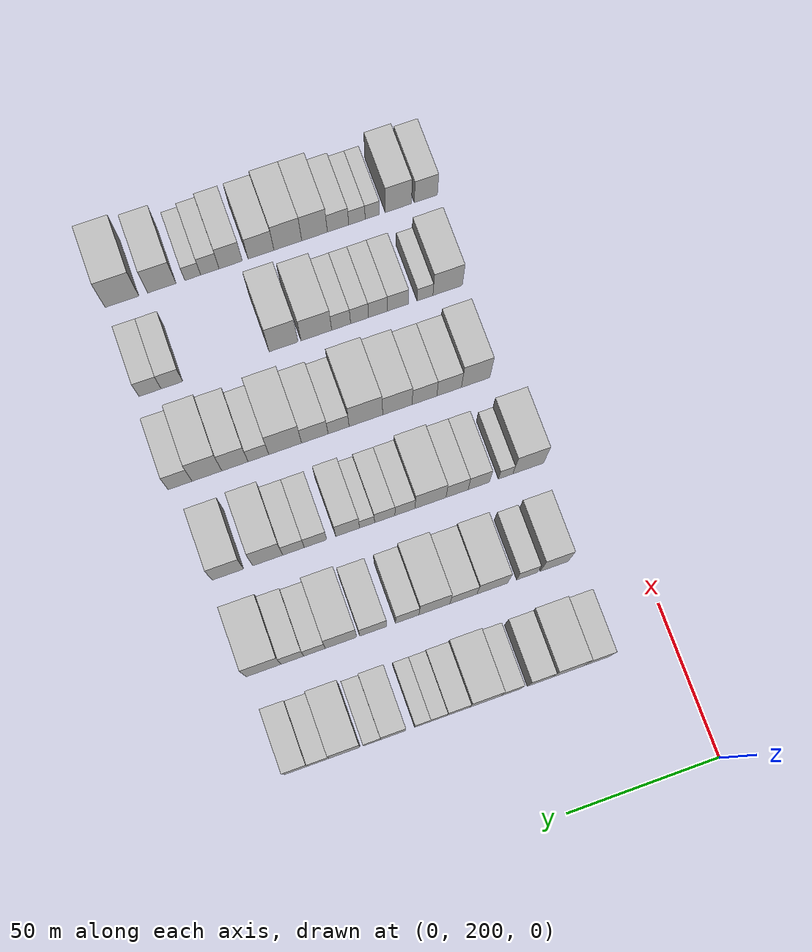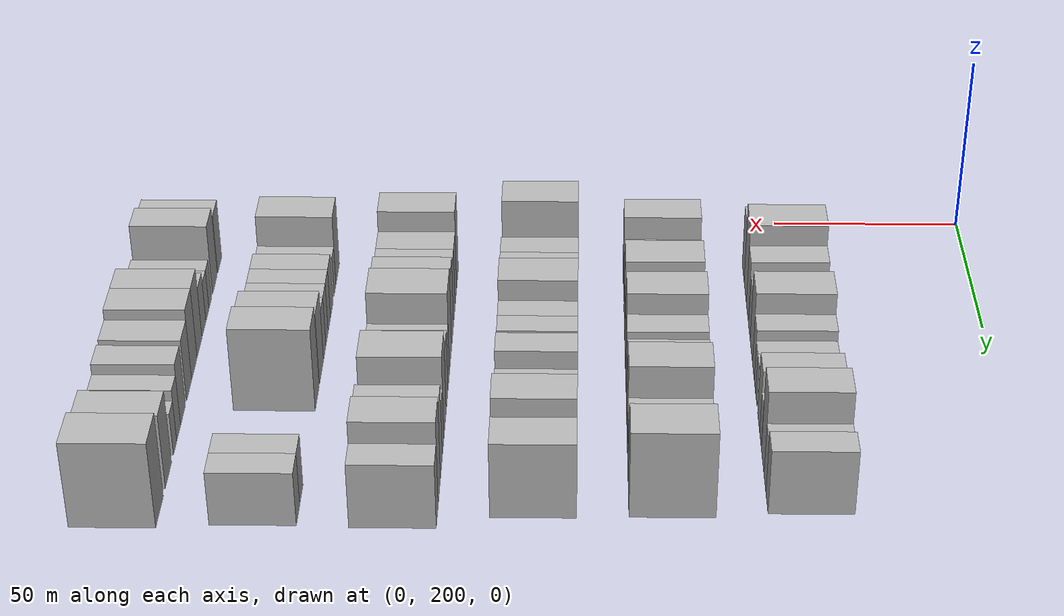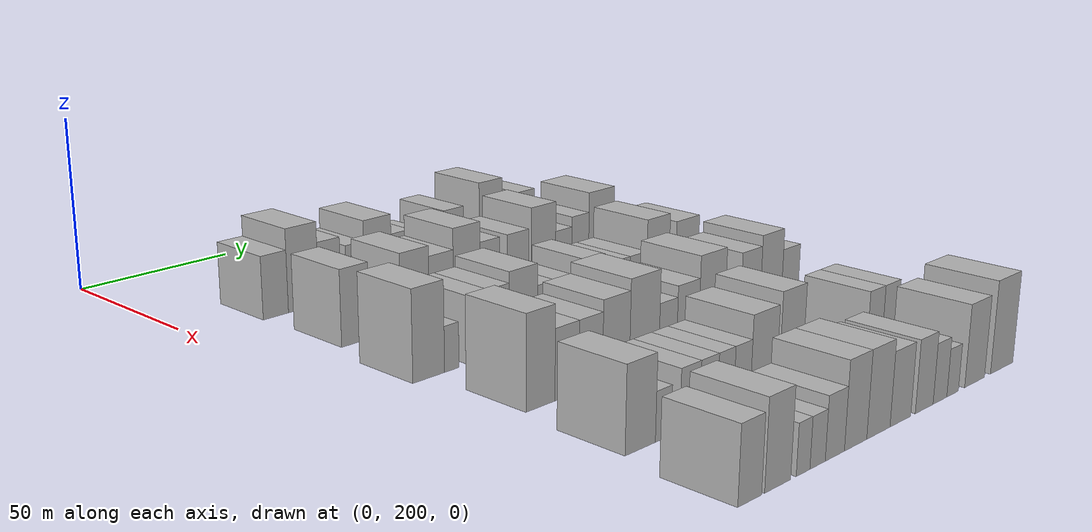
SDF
<sdf version="1.6">
 <world name="default">
  <model name="building_75">
   <static>1</static>
   <pose>50.0000 224.8557 0 0.000000 0.000000 0.000000</pose>
   <link name="link">
    <pose>0 0 9.00 0 0 0</pose>
    <collision name="collision"><geometry><box><size>20.0000 8.4988 18.0000</size></box></geometry></collision>
    <visual name="visual">
     <cast_shadows>0</cast_shadows>
     <geometry><box><size>20.0000 8.4988 18.0000</size></box></geometry>
     <material>
      <script>
       <uri>model://HANNAS_wall/materials/scripts</uri>
       <uri>model://HANNAS_wall/materials/textures</uri>
       <name>vrc/HANNAS_wall</name>
      </script>
     </material>
    </visual>
   </link>
  </model>
  <model name="building_76">
   <static>1</static>
   <pose>50.0000 234.3874 0 0.000000 0.000000 0.000000</pose>
   <link name="link">
    <pose>0 0 12.00 0 0 0</pose>
    <collision name="collision"><geometry><box><size>20.0000 10.5645 24.0000</size></box></geometry></collision>
    <visual name="visual">
     <cast_shadows>0</cast_shadows>
     <geometry><box><size>20.0000 10.5645 24.0000</size></box></geometry>
     <material>
      <script>
       <uri>model://HANNAS_wall/materials/scripts</uri>
       <uri>model://HANNAS_wall/materials/textures</uri>
       <name>vrc/HANNAS_wall</name>
      </script>
     </material>
    </visual>
   </link>
  </model>
  <model name="building_77">
   <static>1</static>
   <pose>50.0000 243.6649 0 0.000000 0.000000 0.000000</pose>
   <link name="link">
    <pose>0 0 9.00 0 0 0</pose>
    <collision name="collision"><geometry><box><size>20.0000 7.9906 18.0000</size></box></geometry></collision>
    <visual name="visual">
     <cast_shadows>0</cast_shadows>
     <geometry><box><size>20.0000 7.9906 18.0000</size></box></geometry>
     <material>
      <script>
       <uri>model://HANNAS_wall/materials/scripts</uri>
       <uri>model://HANNAS_wall/materials/textures</uri>
       <name>vrc/HANNAS_wall</name>
      </script>
     </material>
    </visual>
   </link>
  </model>
  <model name="building_78">
   <static>1</static>
   <pose>50.0000 253.0120 0 0.000000 0.000000 0.000000</pose>
   <link name="link">
    <pose>0 0 7.50 0 0 0</pose>
    <collision name="collision"><geometry><box><size>20.0000 6.7035 15.0000</size></box></geometry></collision>
    <visual name="visual">
     <cast_shadows>0</cast_shadows>
     <geometry><box><size>20.0000 6.7035 15.0000</size></box></geometry>
     <material>
      <script>
       <uri>model://HANNAS_wall/materials/scripts</uri>
       <uri>model://HANNAS_wall/materials/textures</uri>
       <name>vrc/HANNAS_wall</name>
      </script>
     </material>
    </visual>
   </link>
  </model>
  <model name="building_79">
   <static>1</static>
   <pose>50.0000 261.5066 0 0.000000 0.000000 0.000000</pose>
   <link name="link">
    <pose>0 0 10.50 0 0 0</pose>
    <collision name="collision"><geometry><box><size>20.0000 10.2857 21.0000</size></box></geometry></collision>
    <visual name="visual">
     <cast_shadows>0</cast_shadows>
     <geometry><box><size>20.0000 10.2857 21.0000</size></box></geometry>
     <material>
      <script>
       <uri>model://HANNAS_wall/materials/scripts</uri>
       <uri>model://HANNAS_wall/materials/textures</uri>
       <name>vrc/HANNAS_wall</name>
      </script>
     </material>
    </visual>
   </link>
  </model>
  <model name="building_80">
   <static>1</static>
   <pose>50.0000 270.3149 0 0.000000 0.000000 0.000000</pose>
   <link name="link">
    <pose>0 0 7.50 0 0 0</pose>
    <collision name="collision"><geometry><box><size>20.0000 7.3310 15.0000</size></box></geometry></collision>
    <visual name="visual">
     <cast_shadows>0</cast_shadows>
     <geometry><box><size>20.0000 7.3310 15.0000</size></box></geometry>
     <material>
      <script>
       <uri>model://HANNAS_wall/materials/scripts</uri>
       <uri>model://HANNAS_wall/materials/textures</uri>
       <name>vrc/HANNAS_wall</name>
      </script>
     </material>
    </visual>
   </link>
  </model>
  <model name="building_81">
   <static>1</static>
   <pose>50.0000 276.7431 0 0.000000 0.000000 0.000000</pose>
   <link name="link">
    <pose>0 0 6.00 0 0 0</pose>
    <collision name="collision"><geometry><box><size>20.0000 5.5253 12.0000</size></box></geometry></collision>
    <visual name="visual">
     <cast_shadows>0</cast_shadows>
     <geometry><box><size>20.0000 5.5253 12.0000</size></box></geometry>
     <material>
      <script>
       <uri>model://HANNAS_wall/materials/scripts</uri>
       <uri>model://HANNAS_wall/materials/textures</uri>
       <name>vrc/HANNAS_wall</name>
      </script>
     </material>
    </visual>
   </link>
  </model>
  <model name="building_82">
   <static>1</static>
   <pose>50.0000 282.0297 0 0.000000 0.000000 0.000000</pose>
   <link name="link">
    <pose>0 0 6.00 0 0 0</pose>
    <collision name="collision"><geometry><box><size>20.0000 5.0480 12.0000</size></box></geometry></collision>
    <visual name="visual">
     <cast_shadows>0</cast_shadows>
     <geometry><box><size>20.0000 5.0480 12.0000</size></box></geometry>
     <material>
      <script>
       <uri>model://HANNAS_wall/materials/scripts</uri>
       <uri>model://HANNAS_wall/materials/textures</uri>
       <name>vrc/HANNAS_wall</name>
      </script>
     </material>
    </visual>
   </link>
  </model>
  <model name="building_83">
   <static>1</static>
   <pose>50.0000 291.5822 0 0.000000 0.000000 0.000000</pose>
   <link name="link">
    <pose>0 0 9.00 0 0 0</pose>
    <collision name="collision"><geometry><box><size>20.0000 8.0568 18.0000</size></box></geometry></collision>
    <visual name="visual">
     <cast_shadows>0</cast_shadows>
     <geometry><box><size>20.0000 8.0568 18.0000</size></box></geometry>
     <material>
      <script>
       <uri>model://HANNAS_wall/materials/scripts</uri>
       <uri>model://HANNAS_wall/materials/textures</uri>
       <name>vrc/HANNAS_wall</name>
      </script>
     </material>
    </visual>
   </link>
  </model>
  <model name="building_84">
   <static>1</static>
   <pose>50.0000 298.3881 0 0.000000 0.000000 0.000000</pose>
   <link name="link">
    <pose>0 0 6.00 0 0 0</pose>
    <collision name="collision"><geometry><box><size>20.0000 5.5551 12.0000</size></box></geometry></collision>
    <visual name="visual">
     <cast_shadows>0</cast_shadows>
     <geometry><box><size>20.0000 5.5551 12.0000</size></box></geometry>
     <material>
      <script>
       <uri>model://HANNAS_wall/materials/scripts</uri>
       <uri>model://HANNAS_wall/materials/textures</uri>
       <name>vrc/HANNAS_wall</name>
      </script>
     </material>
    </visual>
   </link>
  </model>
  <model name="building_85">
   <static>1</static>
   <pose>50.0000 307.0923 0 0.000000 0.000000 0.000000</pose>
   <link name="link">
    <pose>0 0 12.00 0 0 0</pose>
    <collision name="collision"><geometry><box><size>20.0000 9.8533 24.0000</size></box></geometry></collision>
    <visual name="visual">
     <cast_shadows>0</cast_shadows>
     <geometry><box><size>20.0000 9.8533 24.0000</size></box></geometry>
     <material>
      <script>
       <uri>model://HANNAS_wall/materials/scripts</uri>
       <uri>model://HANNAS_wall/materials/textures</uri>
       <name>vrc/HANNAS_wall</name>
      </script>
     </material>
    </visual>
   </link>
  </model>
  <model name="building_86">
   <static>1</static>
   <pose>50.0000 315.4735 0 0.000000 0.000000 0.000000</pose>
   <link name="link">
    <pose>0 0 7.50 0 0 0</pose>
    <collision name="collision"><geometry><box><size>20.0000 6.9090 15.0000</size></box></geometry></collision>
    <visual name="visual">
     <cast_shadows>0</cast_shadows>
     <geometry><box><size>20.0000 6.9090 15.0000</size></box></geometry>
     <material>
      <script>
       <uri>model://HANNAS_wall/materials/scripts</uri>
       <uri>model://HANNAS_wall/materials/textures</uri>
       <name>vrc/HANNAS_wall</name>
      </script>
     </material>
    </visual>
   </link>
  </model>
  <model name="building_87">
   <static>1</static>
   <pose>50.0000 322.7484 0 0.000000 0.000000 0.000000</pose>
   <link name="link">
    <pose>0 0 9.00 0 0 0</pose>
    <collision name="collision"><geometry><box><size>20.0000 7.6408 18.0000</size></box></geometry></collision>
    <visual name="visual">
     <cast_shadows>0</cast_shadows>
     <geometry><box><size>20.0000 7.6408 18.0000</size></box></geometry>
     <material>
      <script>
       <uri>model://HANNAS_wall/materials/scripts</uri>
       <uri>model://HANNAS_wall/materials/textures</uri>
       <name>vrc/HANNAS_wall</name>
      </script>
     </material>
    </visual>
   </link>
  </model>
  <model name="building_201">
   <static>1</static>
   <pose>82.0000 226.5754 0 0.000000 0.000000 0.000000</pose>
   <link name="link">
    <pose>0 0 10.50 0 0 0</pose>
    <collision name="collision"><geometry><box><size>20.0000 9.3134 21.0000</size></box></geometry></collision>
    <visual name="visual">
     <cast_shadows>0</cast_shadows>
     <geometry><box><size>20.0000 9.3134 21.0000</size></box></geometry>
     <material>
      <script>
       <uri>model://HANNAS_wall/materials/scripts</uri>
       <uri>model://HANNAS_wall/materials/textures</uri>
       <name>vrc/HANNAS_wall</name>
      </script>
     </material>
    </visual>
   </link>
  </model>
  <model name="building_202">
   <static>1</static>
   <pose>82.0000 235.6783 0 0.000000 0.000000 0.000000</pose>
   <link name="link">
    <pose>0 0 7.50 0 0 0</pose>
    <collision name="collision"><geometry><box><size>20.0000 6.8925 15.0000</size></box></geometry></collision>
    <visual name="visual">
     <cast_shadows>0</cast_shadows>
     <geometry><box><size>20.0000 6.8925 15.0000</size></box></geometry>
     <material>
      <script>
       <uri>model://HANNAS_wall/materials/scripts</uri>
       <uri>model://HANNAS_wall/materials/textures</uri>
       <name>vrc/HANNAS_wall</name>
      </script>
     </material>
    </visual>
   </link>
  </model>
  <model name="building_203">
   <static>1</static>
   <pose>82.0000 247.2587 0 0.000000 0.000000 0.000000</pose>
   <link name="link">
    <pose>0 0 10.50 0 0 0</pose>
    <collision name="collision"><geometry><box><size>20.0000 10.2682 21.0000</size></box></geometry></collision>
    <visual name="visual">
     <cast_shadows>0</cast_shadows>
     <geometry><box><size>20.0000 10.2682 21.0000</size></box></geometry>
     <material>
      <script>
       <uri>model://HANNAS_wall/materials/scripts</uri>
       <uri>model://HANNAS_wall/materials/textures</uri>
       <name>vrc/HANNAS_wall</name>
      </script>
     </material>
    </visual>
   </link>
  </model>
  <model name="building_204">
   <static>1</static>
   <pose>82.0000 256.8901 0 0.000000 0.000000 0.000000</pose>
   <link name="link">
    <pose>0 0 9.00 0 0 0</pose>
    <collision name="collision"><geometry><box><size>20.0000 8.9946 18.0000</size></box></geometry></collision>
    <visual name="visual">
     <cast_shadows>0</cast_shadows>
     <geometry><box><size>20.0000 8.9946 18.0000</size></box></geometry>
     <material>
      <script>
       <uri>model://HANNAS_wall/materials/scripts</uri>
       <uri>model://HANNAS_wall/materials/textures</uri>
       <name>vrc/HANNAS_wall</name>
      </script>
     </material>
    </visual>
   </link>
  </model>
  <model name="building_205">
   <static>1</static>
   <pose>82.0000 266.4867 0 0.000000 0.000000 0.000000</pose>
   <link name="link">
    <pose>0 0 12.00 0 0 0</pose>
    <collision name="collision"><geometry><box><size>20.0000 10.1987 24.0000</size></box></geometry></collision>
    <visual name="visual">
     <cast_shadows>0</cast_shadows>
     <geometry><box><size>20.0000 10.1987 24.0000</size></box></geometry>
     <material>
      <script>
       <uri>model://HANNAS_wall/materials/scripts</uri>
       <uri>model://HANNAS_wall/materials/textures</uri>
       <name>vrc/HANNAS_wall</name>
      </script>
     </material>
    </visual>
   </link>
  </model>
  <model name="building_206">
   <static>1</static>
   <pose>82.0000 275.4344 0 0.000000 0.000000 0.000000</pose>
   <link name="link">
    <pose>0 0 9.00 0 0 0</pose>
    <collision name="collision"><geometry><box><size>20.0000 7.6966 18.0000</size></box></geometry></collision>
    <visual name="visual">
     <cast_shadows>0</cast_shadows>
     <geometry><box><size>20.0000 7.6966 18.0000</size></box></geometry>
     <material>
      <script>
       <uri>model://HANNAS_wall/materials/scripts</uri>
       <uri>model://HANNAS_wall/materials/textures</uri>
       <name>vrc/HANNAS_wall</name>
      </script>
     </material>
    </visual>
   </link>
  </model>
  <model name="building_207">
   <static>1</static>
   <pose>82.0000 286.6799 0 0.000000 0.000000 0.000000</pose>
   <link name="link">
    <pose>0 0 9.00 0 0 0</pose>
    <collision name="collision"><geometry><box><size>20.0000 8.7943 18.0000</size></box></geometry></collision>
    <visual name="visual">
     <cast_shadows>0</cast_shadows>
     <geometry><box><size>20.0000 8.7943 18.0000</size></box></geometry>
     <material>
      <script>
       <uri>model://HANNAS_wall/materials/scripts</uri>
       <uri>model://HANNAS_wall/materials/textures</uri>
       <name>vrc/HANNAS_wall</name>
      </script>
     </material>
    </visual>
   </link>
  </model>
  <model name="building_208">
   <static>1</static>
   <pose>82.0000 297.1948 0 0.000000 0.000000 0.000000</pose>
   <link name="link">
    <pose>0 0 12.00 0 0 0</pose>
    <collision name="collision"><geometry><box><size>20.0000 10.2355 24.0000</size></box></geometry></collision>
    <visual name="visual">
     <cast_shadows>0</cast_shadows>
     <geometry><box><size>20.0000 10.2355 24.0000</size></box></geometry>
     <material>
      <script>
       <uri>model://HANNAS_wall/materials/scripts</uri>
       <uri>model://HANNAS_wall/materials/textures</uri>
       <name>vrc/HANNAS_wall</name>
      </script>
     </material>
    </visual>
   </link>
  </model>
  <model name="building_209">
   <static>1</static>
   <pose>82.0000 305.8446 0 0.000000 0.000000 0.000000</pose>
   <link name="link">
    <pose>0 0 7.50 0 0 0</pose>
    <collision name="collision"><geometry><box><size>20.0000 7.0640 15.0000</size></box></geometry></collision>
    <visual name="visual">
     <cast_shadows>0</cast_shadows>
     <geometry><box><size>20.0000 7.0640 15.0000</size></box></geometry>
     <material>
      <script>
       <uri>model://HANNAS_wall/materials/scripts</uri>
       <uri>model://HANNAS_wall/materials/textures</uri>
       <name>vrc/HANNAS_wall</name>
      </script>
     </material>
    </visual>
   </link>
  </model>
  <model name="building_210">
   <static>1</static>
   <pose>82.0000 313.0717 0 0.000000 0.000000 0.000000</pose>
   <link name="link">
    <pose>0 0 9.00 0 0 0</pose>
    <collision name="collision"><geometry><box><size>20.0000 7.3902 18.0000</size></box></geometry></collision>
    <visual name="visual">
     <cast_shadows>0</cast_shadows>
     <geometry><box><size>20.0000 7.3902 18.0000</size></box></geometry>
     <material>
      <script>
       <uri>model://HANNAS_wall/materials/scripts</uri>
       <uri>model://HANNAS_wall/materials/textures</uri>
       <name>vrc/HANNAS_wall</name>
      </script>
     </material>
    </visual>
   </link>
  </model>
  <model name="building_211">
   <static>1</static>
   <pose>82.0000 322.4652 0 0.000000 0.000000 0.000000</pose>
   <link name="link">
    <pose>0 0 12.00 0 0 0</pose>
    <collision name="collision"><geometry><box><size>20.0000 11.3969 24.0000</size></box></geometry></collision>
    <visual name="visual">
     <cast_shadows>0</cast_shadows>
     <geometry><box><size>20.0000 11.3969 24.0000</size></box></geometry>
     <material>
      <script>
       <uri>model://HANNAS_wall/materials/scripts</uri>
       <uri>model://HANNAS_wall/materials/textures</uri>
       <name>vrc/HANNAS_wall</name>
      </script>
     </material>
    </visual>
   </link>
  </model>
  <model name="building_324">
   <static>1</static>
   <pose>114.0000 223.1894 0 0.000000 0.000000 0.000000</pose>
   <link name="link">
    <pose>0 0 12.00 0 0 0</pose>
    <collision name="collision"><geometry><box><size>20.0000 10.4297 24.0000</size></box></geometry></collision>
    <visual name="visual">
     <cast_shadows>0</cast_shadows>
     <geometry><box><size>20.0000 10.4297 24.0000</size></box></geometry>
     <material>
      <script>
       <uri>model://HANNAS_wall/materials/scripts</uri>
       <uri>model://HANNAS_wall/materials/textures</uri>
       <name>vrc/HANNAS_wall</name>
      </script>
     </material>
    </visual>
   </link>
  </model>
  <model name="building_325">
   <static>1</static>
   <pose>114.0000 230.8320 0 0.000000 0.000000 0.000000</pose>
   <link name="link">
    <pose>0 0 6.00 0 0 0</pose>
    <collision name="collision"><geometry><box><size>20.0000 4.8554 12.0000</size></box></geometry></collision>
    <visual name="visual">
     <cast_shadows>0</cast_shadows>
     <geometry><box><size>20.0000 4.8554 12.0000</size></box></geometry>
     <material>
      <script>
       <uri>model://HANNAS_wall/materials/scripts</uri>
       <uri>model://HANNAS_wall/materials/textures</uri>
       <name>vrc/HANNAS_wall</name>
      </script>
     </material>
    </visual>
   </link>
  </model>
  <model name="building_326">
   <static>1</static>
   <pose>114.0000 239.8863 0 0.000000 0.000000 0.000000</pose>
   <link name="link">
    <pose>0 0 9.00 0 0 0</pose>
    <collision name="collision"><geometry><box><size>20.0000 7.2532 18.0000</size></box></geometry></collision>
    <visual name="visual">
     <cast_shadows>0</cast_shadows>
     <geometry><box><size>20.0000 7.2532 18.0000</size></box></geometry>
     <material>
      <script>
       <uri>model://HANNAS_wall/materials/scripts</uri>
       <uri>model://HANNAS_wall/materials/textures</uri>
       <name>vrc/HANNAS_wall</name>
      </script>
     </material>
    </visual>
   </link>
  </model>
  <model name="building_327">
   <static>1</static>
   <pose>114.0000 247.2273 0 0.000000 0.000000 0.000000</pose>
   <link name="link">
    <pose>0 0 9.00 0 0 0</pose>
    <collision name="collision"><geometry><box><size>20.0000 7.4287 18.0000</size></box></geometry></collision>
    <visual name="visual">
     <cast_shadows>0</cast_shadows>
     <geometry><box><size>20.0000 7.4287 18.0000</size></box></geometry>
     <material>
      <script>
       <uri>model://HANNAS_wall/materials/scripts</uri>
       <uri>model://HANNAS_wall/materials/textures</uri>
       <name>vrc/HANNAS_wall</name>
      </script>
     </material>
    </visual>
   </link>
  </model>
  <model name="building_328">
   <static>1</static>
   <pose>114.0000 256.1393 0 0.000000 0.000000 0.000000</pose>
   <link name="link">
    <pose>0 0 10.50 0 0 0</pose>
    <collision name="collision"><geometry><box><size>20.0000 10.3953 21.0000</size></box></geometry></collision>
    <visual name="visual">
     <cast_shadows>0</cast_shadows>
     <geometry><box><size>20.0000 10.3953 21.0000</size></box></geometry>
     <material>
      <script>
       <uri>model://HANNAS_wall/materials/scripts</uri>
       <uri>model://HANNAS_wall/materials/textures</uri>
       <name>vrc/HANNAS_wall</name>
      </script>
     </material>
    </visual>
   </link>
  </model>
  <model name="building_329">
   <static>1</static>
   <pose>114.0000 264.6889 0 0.000000 0.000000 0.000000</pose>
   <link name="link">
    <pose>0 0 7.50 0 0 0</pose>
    <collision name="collision"><geometry><box><size>20.0000 6.7039 15.0000</size></box></geometry></collision>
    <visual name="visual">
     <cast_shadows>0</cast_shadows>
     <geometry><box><size>20.0000 6.7039 15.0000</size></box></geometry>
     <material>
      <script>
       <uri>model://HANNAS_wall/materials/scripts</uri>
       <uri>model://HANNAS_wall/materials/textures</uri>
       <name>vrc/HANNAS_wall</name>
      </script>
     </material>
    </visual>
   </link>
  </model>
  <model name="building_330">
   <static>1</static>
   <pose>114.0000 271.4388 0 0.000000 0.000000 0.000000</pose>
   <link name="link">
    <pose>0 0 7.50 0 0 0</pose>
    <collision name="collision"><geometry><box><size>20.0000 6.7958 15.0000</size></box></geometry></collision>
    <visual name="visual">
     <cast_shadows>0</cast_shadows>
     <geometry><box><size>20.0000 6.7958 15.0000</size></box></geometry>
     <material>
      <script>
       <uri>model://HANNAS_wall/materials/scripts</uri>
       <uri>model://HANNAS_wall/materials/textures</uri>
       <name>vrc/HANNAS_wall</name>
      </script>
     </material>
    </visual>
   </link>
  </model>
  <model name="building_331">
   <static>1</static>
   <pose>114.0000 277.3533 0 0.000000 0.000000 0.000000</pose>
   <link name="link">
    <pose>0 0 6.00 0 0 0</pose>
    <collision name="collision"><geometry><box><size>20.0000 5.0332 12.0000</size></box></geometry></collision>
    <visual name="visual">
     <cast_shadows>0</cast_shadows>
     <geometry><box><size>20.0000 5.0332 12.0000</size></box></geometry>
     <material>
      <script>
       <uri>model://HANNAS_wall/materials/scripts</uri>
       <uri>model://HANNAS_wall/materials/textures</uri>
       <name>vrc/HANNAS_wall</name>
      </script>
     </material>
    </visual>
   </link>
  </model>
  <model name="building_332">
   <static>1</static>
   <pose>114.0000 283.8238 0 0.000000 0.000000 0.000000</pose>
   <link name="link">
    <pose>0 0 9.00 0 0 0</pose>
    <collision name="collision"><geometry><box><size>20.0000 7.9078 18.0000</size></box></geometry></collision>
    <visual name="visual">
     <cast_shadows>0</cast_shadows>
     <geometry><box><size>20.0000 7.9078 18.0000</size></box></geometry>
     <material>
      <script>
       <uri>model://HANNAS_wall/materials/scripts</uri>
       <uri>model://HANNAS_wall/materials/textures</uri>
       <name>vrc/HANNAS_wall</name>
      </script>
     </material>
    </visual>
   </link>
  </model>
  <model name="building_333">
   <static>1</static>
   <pose>114.0000 294.4912 0 0.000000 0.000000 0.000000</pose>
   <link name="link">
    <pose>0 0 7.50 0 0 0</pose>
    <collision name="collision"><geometry><box><size>20.0000 7.4270 15.0000</size></box></geometry></collision>
    <visual name="visual">
     <cast_shadows>0</cast_shadows>
     <geometry><box><size>20.0000 7.4270 15.0000</size></box></geometry>
     <material>
      <script>
       <uri>model://HANNAS_wall/materials/scripts</uri>
       <uri>model://HANNAS_wall/materials/textures</uri>
       <name>vrc/HANNAS_wall</name>
      </script>
     </material>
    </visual>
   </link>
  </model>
  <model name="building_334">
   <static>1</static>
   <pose>114.0000 301.7808 0 0.000000 0.000000 0.000000</pose>
   <link name="link">
    <pose>0 0 7.50 0 0 0</pose>
    <collision name="collision"><geometry><box><size>20.0000 7.1523 15.0000</size></box></geometry></collision>
    <visual name="visual">
     <cast_shadows>0</cast_shadows>
     <geometry><box><size>20.0000 7.1523 15.0000</size></box></geometry>
     <material>
      <script>
       <uri>model://HANNAS_wall/materials/scripts</uri>
       <uri>model://HANNAS_wall/materials/textures</uri>
       <name>vrc/HANNAS_wall</name>
      </script>
     </material>
    </visual>
   </link>
  </model>
  <model name="building_335">
   <static>1</static>
   <pose>114.0000 310.3108 0 0.000000 0.000000 0.000000</pose>
   <link name="link">
    <pose>0 0 12.00 0 0 0</pose>
    <collision name="collision"><geometry><box><size>20.0000 9.9076 24.0000</size></box></geometry></collision>
    <visual name="visual">
     <cast_shadows>0</cast_shadows>
     <geometry><box><size>20.0000 9.9076 24.0000</size></box></geometry>
     <material>
      <script>
       <uri>model://HANNAS_wall/materials/scripts</uri>
       <uri>model://HANNAS_wall/materials/textures</uri>
       <name>vrc/HANNAS_wall</name>
      </script>
     </material>
    </visual>
   </link>
  </model>
  <model name="building_336">
   <static>1</static>
   <pose>114.0000 323.4535 0 0.000000 0.000000 0.000000</pose>
   <link name="link">
    <pose>0 0 10.50 0 0 0</pose>
    <collision name="collision"><geometry><box><size>20.0000 10.3777 21.0000</size></box></geometry></collision>
    <visual name="visual">
     <cast_shadows>0</cast_shadows>
     <geometry><box><size>20.0000 10.3777 21.0000</size></box></geometry>
     <material>
      <script>
       <uri>model://HANNAS_wall/materials/scripts</uri>
       <uri>model://HANNAS_wall/materials/textures</uri>
       <name>vrc/HANNAS_wall</name>
      </script>
     </material>
    </visual>
   </link>
  </model>
  <model name="building_447">
   <static>1</static>
   <pose>146.0000 229.1113 0 0.000000 0.000000 0.000000</pose>
   <link name="link">
    <pose>0 0 12.00 0 0 0</pose>
    <collision name="collision"><geometry><box><size>20.0000 9.7020 24.0000</size></box></geometry></collision>
    <visual name="visual">
     <cast_shadows>0</cast_shadows>
     <geometry><box><size>20.0000 9.7020 24.0000</size></box></geometry>
     <material>
      <script>
       <uri>model://HANNAS_wall/materials/scripts</uri>
       <uri>model://HANNAS_wall/materials/textures</uri>
       <name>vrc/HANNAS_wall</name>
      </script>
     </material>
    </visual>
   </link>
  </model>
  <model name="building_448">
   <static>1</static>
   <pose>146.0000 238.1530 0 0.000000 0.000000 0.000000</pose>
   <link name="link">
    <pose>0 0 9.00 0 0 0</pose>
    <collision name="collision"><geometry><box><size>20.0000 8.3814 18.0000</size></box></geometry></collision>
    <visual name="visual">
     <cast_shadows>0</cast_shadows>
     <geometry><box><size>20.0000 8.3814 18.0000</size></box></geometry>
     <material>
      <script>
       <uri>model://HANNAS_wall/materials/scripts</uri>
       <uri>model://HANNAS_wall/materials/textures</uri>
       <name>vrc/HANNAS_wall</name>
      </script>
     </material>
    </visual>
   </link>
  </model>
  <model name="building_449">
   <static>1</static>
   <pose>146.0000 246.5409 0 0.000000 0.000000 0.000000</pose>
   <link name="link">
    <pose>0 0 9.00 0 0 0</pose>
    <collision name="collision"><geometry><box><size>20.0000 8.3944 18.0000</size></box></geometry></collision>
    <visual name="visual">
     <cast_shadows>0</cast_shadows>
     <geometry><box><size>20.0000 8.3944 18.0000</size></box></geometry>
     <material>
      <script>
       <uri>model://HANNAS_wall/materials/scripts</uri>
       <uri>model://HANNAS_wall/materials/textures</uri>
       <name>vrc/HANNAS_wall</name>
      </script>
     </material>
    </visual>
   </link>
  </model>
  <model name="building_450">
   <static>1</static>
   <pose>146.0000 255.7357 0 0.000000 0.000000 0.000000</pose>
   <link name="link">
    <pose>0 0 10.50 0 0 0</pose>
    <collision name="collision"><geometry><box><size>20.0000 9.9952 21.0000</size></box></geometry></collision>
    <visual name="visual">
     <cast_shadows>0</cast_shadows>
     <geometry><box><size>20.0000 9.9952 21.0000</size></box></geometry>
     <material>
      <script>
       <uri>model://HANNAS_wall/materials/scripts</uri>
       <uri>model://HANNAS_wall/materials/textures</uri>
       <name>vrc/HANNAS_wall</name>
      </script>
     </material>
    </visual>
   </link>
  </model>
  <model name="building_451">
   <static>1</static>
   <pose>146.0000 266.4116 0 0.000000 0.000000 0.000000</pose>
   <link name="link">
    <pose>0 0 12.00 0 0 0</pose>
    <collision name="collision"><geometry><box><size>20.0000 11.3567 24.0000</size></box></geometry></collision>
    <visual name="visual">
     <cast_shadows>0</cast_shadows>
     <geometry><box><size>20.0000 11.3567 24.0000</size></box></geometry>
     <material>
      <script>
       <uri>model://HANNAS_wall/materials/scripts</uri>
       <uri>model://HANNAS_wall/materials/textures</uri>
       <name>vrc/HANNAS_wall</name>
      </script>
     </material>
    </visual>
   </link>
  </model>
  <model name="building_452">
   <static>1</static>
   <pose>146.0000 275.6304 0 0.000000 0.000000 0.000000</pose>
   <link name="link">
    <pose>0 0 7.50 0 0 0</pose>
    <collision name="collision"><geometry><box><size>20.0000 7.0809 15.0000</size></box></geometry></collision>
    <visual name="visual">
     <cast_shadows>0</cast_shadows>
     <geometry><box><size>20.0000 7.0809 15.0000</size></box></geometry>
     <material>
      <script>
       <uri>model://HANNAS_wall/materials/scripts</uri>
       <uri>model://HANNAS_wall/materials/textures</uri>
       <name>vrc/HANNAS_wall</name>
      </script>
     </material>
    </visual>
   </link>
  </model>
  <model name="building_453">
   <static>1</static>
   <pose>146.0000 283.6409 0 0.000000 0.000000 0.000000</pose>
   <link name="link">
    <pose>0 0 9.00 0 0 0</pose>
    <collision name="collision"><geometry><box><size>20.0000 8.9401 18.0000</size></box></geometry></collision>
    <visual name="visual">
     <cast_shadows>0</cast_shadows>
     <geometry><box><size>20.0000 8.9401 18.0000</size></box></geometry>
     <material>
      <script>
       <uri>model://HANNAS_wall/materials/scripts</uri>
       <uri>model://HANNAS_wall/materials/textures</uri>
       <name>vrc/HANNAS_wall</name>
      </script>
     </material>
    </visual>
   </link>
  </model>
  <model name="building_454">
   <static>1</static>
   <pose>146.0000 293.6087 0 0.000000 0.000000 0.000000</pose>
   <link name="link">
    <pose>0 0 12.00 0 0 0</pose>
    <collision name="collision"><geometry><box><size>20.0000 10.9955 24.0000</size></box></geometry></collision>
    <visual name="visual">
     <cast_shadows>0</cast_shadows>
     <geometry><box><size>20.0000 10.9955 24.0000</size></box></geometry>
     <material>
      <script>
       <uri>model://HANNAS_wall/materials/scripts</uri>
       <uri>model://HANNAS_wall/materials/textures</uri>
       <name>vrc/HANNAS_wall</name>
      </script>
     </material>
    </visual>
   </link>
  </model>
  <model name="building_455">
   <static>1</static>
   <pose>146.0000 302.5601 0 0.000000 0.000000 0.000000</pose>
   <link name="link">
    <pose>0 0 7.50 0 0 0</pose>
    <collision name="collision"><geometry><box><size>20.0000 6.9073 15.0000</size></box></geometry></collision>
    <visual name="visual">
     <cast_shadows>0</cast_shadows>
     <geometry><box><size>20.0000 6.9073 15.0000</size></box></geometry>
     <material>
      <script>
       <uri>model://HANNAS_wall/materials/scripts</uri>
       <uri>model://HANNAS_wall/materials/textures</uri>
       <name>vrc/HANNAS_wall</name>
      </script>
     </material>
    </visual>
   </link>
  </model>
  <model name="building_456">
   <static>1</static>
   <pose>146.0000 310.4073 0 0.000000 0.000000 0.000000</pose>
   <link name="link">
    <pose>0 0 10.50 0 0 0</pose>
    <collision name="collision"><geometry><box><size>20.0000 8.7871 21.0000</size></box></geometry></collision>
    <visual name="visual">
     <cast_shadows>0</cast_shadows>
     <geometry><box><size>20.0000 8.7871 21.0000</size></box></geometry>
     <material>
      <script>
       <uri>model://HANNAS_wall/materials/scripts</uri>
       <uri>model://HANNAS_wall/materials/textures</uri>
       <name>vrc/HANNAS_wall</name>
      </script>
     </material>
    </visual>
   </link>
  </model>
  <model name="building_457">
   <static>1</static>
   <pose>146.0000 319.7507 0 0.000000 0.000000 0.000000</pose>
   <link name="link">
    <pose>0 0 12.00 0 0 0</pose>
    <collision name="collision"><geometry><box><size>20.0000 9.8997 24.0000</size></box></geometry></collision>
    <visual name="visual">
     <cast_shadows>0</cast_shadows>
     <geometry><box><size>20.0000 9.8997 24.0000</size></box></geometry>
     <material>
      <script>
       <uri>model://HANNAS_wall/materials/scripts</uri>
       <uri>model://HANNAS_wall/materials/textures</uri>
       <name>vrc/HANNAS_wall</name>
      </script>
     </material>
    </visual>
   </link>
  </model>
  <model name="building_458">
   <static>1</static>
   <pose>146.0000 328.6981 0 0.000000 0.000000 0.000000</pose>
   <link name="link">
    <pose>0 0 9.00 0 0 0</pose>
    <collision name="collision"><geometry><box><size>20.0000 7.9951 18.0000</size></box></geometry></collision>
    <visual name="visual">
     <cast_shadows>0</cast_shadows>
     <geometry><box><size>20.0000 7.9951 18.0000</size></box></geometry>
     <material>
      <script>
       <uri>model://HANNAS_wall/materials/scripts</uri>
       <uri>model://HANNAS_wall/materials/textures</uri>
       <name>vrc/HANNAS_wall</name>
      </script>
     </material>
    </visual>
   </link>
  </model>
  <model name="building_571">
   <static>1</static>
   <pose>178.0000 226.9272 0 0.000000 0.000000 0.000000</pose>
   <link name="link">
    <pose>0 0 10.50 0 0 0</pose>
    <collision name="collision"><geometry><box><size>20.0000 10.1603 21.0000</size></box></geometry></collision>
    <visual name="visual">
     <cast_shadows>0</cast_shadows>
     <geometry><box><size>20.0000 10.1603 21.0000</size></box></geometry>
     <material>
      <script>
       <uri>model://HANNAS_wall/materials/scripts</uri>
       <uri>model://HANNAS_wall/materials/textures</uri>
       <name>vrc/HANNAS_wall</name>
      </script>
     </material>
    </visual>
   </link>
  </model>
  <model name="building_572">
   <static>1</static>
   <pose>178.0000 234.7334 0 0.000000 0.000000 0.000000</pose>
   <link name="link">
    <pose>0 0 6.00 0 0 0</pose>
    <collision name="collision"><geometry><box><size>20.0000 5.4521 12.0000</size></box></geometry></collision>
    <visual name="visual">
     <cast_shadows>0</cast_shadows>
     <geometry><box><size>20.0000 5.4521 12.0000</size></box></geometry>
     <material>
      <script>
       <uri>model://HANNAS_wall/materials/scripts</uri>
       <uri>model://HANNAS_wall/materials/textures</uri>
       <name>vrc/HANNAS_wall</name>
      </script>
     </material>
    </visual>
   </link>
  </model>
  <model name="building_573">
   <static>1</static>
   <pose>178.0000 244.0535 0 0.000000 0.000000 0.000000</pose>
   <link name="link">
    <pose>0 0 7.50 0 0 0</pose>
    <collision name="collision"><geometry><box><size>20.0000 7.1880 15.0000</size></box></geometry></collision>
    <visual name="visual">
     <cast_shadows>0</cast_shadows>
     <geometry><box><size>20.0000 7.1880 15.0000</size></box></geometry>
     <material>
      <script>
       <uri>model://HANNAS_wall/materials/scripts</uri>
       <uri>model://HANNAS_wall/materials/textures</uri>
       <name>vrc/HANNAS_wall</name>
      </script>
     </material>
    </visual>
   </link>
  </model>
  <model name="building_574">
   <static>1</static>
   <pose>178.0000 250.9108 0 0.000000 0.000000 0.000000</pose>
   <link name="link">
    <pose>0 0 7.50 0 0 0</pose>
    <collision name="collision"><geometry><box><size>20.0000 6.5266 15.0000</size></box></geometry></collision>
    <visual name="visual">
     <cast_shadows>0</cast_shadows>
     <geometry><box><size>20.0000 6.5266 15.0000</size></box></geometry>
     <material>
      <script>
       <uri>model://HANNAS_wall/materials/scripts</uri>
       <uri>model://HANNAS_wall/materials/textures</uri>
       <name>vrc/HANNAS_wall</name>
      </script>
     </material>
    </visual>
   </link>
  </model>
  <model name="building_575">
   <static>1</static>
   <pose>178.0000 257.2484 0 0.000000 0.000000 0.000000</pose>
   <link name="link">
    <pose>0 0 7.50 0 0 0</pose>
    <collision name="collision"><geometry><box><size>20.0000 6.1486 15.0000</size></box></geometry></collision>
    <visual name="visual">
     <cast_shadows>0</cast_shadows>
     <geometry><box><size>20.0000 6.1486 15.0000</size></box></geometry>
     <material>
      <script>
       <uri>model://HANNAS_wall/materials/scripts</uri>
       <uri>model://HANNAS_wall/materials/textures</uri>
       <name>vrc/HANNAS_wall</name>
      </script>
     </material>
    </visual>
   </link>
  </model>
  <model name="building_576">
   <static>1</static>
   <pose>178.0000 263.5596 0 0.000000 0.000000 0.000000</pose>
   <link name="link">
    <pose>0 0 7.50 0 0 0</pose>
    <collision name="collision"><geometry><box><size>20.0000 6.4739 15.0000</size></box></geometry></collision>
    <visual name="visual">
     <cast_shadows>0</cast_shadows>
     <geometry><box><size>20.0000 6.4739 15.0000</size></box></geometry>
     <material>
      <script>
       <uri>model://HANNAS_wall/materials/scripts</uri>
       <uri>model://HANNAS_wall/materials/textures</uri>
       <name>vrc/HANNAS_wall</name>
      </script>
     </material>
    </visual>
   </link>
  </model>
  <model name="building_577">
   <static>1</static>
   <pose>178.0000 272.0264 0 0.000000 0.000000 0.000000</pose>
   <link name="link">
    <pose>0 0 10.50 0 0 0</pose>
    <collision name="collision"><geometry><box><size>20.0000 10.4597 21.0000</size></box></geometry></collision>
    <visual name="visual">
     <cast_shadows>0</cast_shadows>
     <geometry><box><size>20.0000 10.4597 21.0000</size></box></geometry>
     <material>
      <script>
       <uri>model://HANNAS_wall/materials/scripts</uri>
       <uri>model://HANNAS_wall/materials/textures</uri>
       <name>vrc/HANNAS_wall</name>
      </script>
     </material>
    </visual>
   </link>
  </model>
  <model name="building_578">
   <static>1</static>
   <pose>178.0000 283.1768 0 0.000000 0.000000 0.000000</pose>
   <link name="link">
    <pose>0 0 12.00 0 0 0</pose>
    <collision name="collision"><geometry><box><size>20.0000 9.8411 24.0000</size></box></geometry></collision>
    <visual name="visual">
     <cast_shadows>0</cast_shadows>
     <geometry><box><size>20.0000 9.8411 24.0000</size></box></geometry>
     <material>
      <script>
       <uri>model://HANNAS_wall/materials/scripts</uri>
       <uri>model://HANNAS_wall/materials/textures</uri>
       <name>vrc/HANNAS_wall</name>
      </script>
     </material>
    </visual>
   </link>
  </model>
  <model name="building_579">
   <static>1</static>
   <pose>178.0000 320.9970 0 0.000000 0.000000 0.000000</pose>
   <link name="link">
    <pose>0 0 7.50 0 0 0</pose>
    <collision name="collision"><geometry><box><size>20.0000 7.2664 15.0000</size></box></geometry></collision>
    <visual name="visual">
     <cast_shadows>0</cast_shadows>
     <geometry><box><size>20.0000 7.2664 15.0000</size></box></geometry>
     <material>
      <script>
       <uri>model://HANNAS_wall/materials/scripts</uri>
       <uri>model://HANNAS_wall/materials/textures</uri>
       <name>vrc/HANNAS_wall</name>
      </script>
     </material>
    </visual>
   </link>
  </model>
  <model name="building_580">
   <static>1</static>
   <pose>178.0000 328.3646 0 0.000000 0.000000 0.000000</pose>
   <link name="link">
    <pose>0 0 7.50 0 0 0</pose>
    <collision name="collision"><geometry><box><size>20.0000 7.4689 15.0000</size></box></geometry></collision>
    <visual name="visual">
     <cast_shadows>0</cast_shadows>
     <geometry><box><size>20.0000 7.4689 15.0000</size></box></geometry>
     <material>
      <script>
       <uri>model://HANNAS_wall/materials/scripts</uri>
       <uri>model://HANNAS_wall/materials/textures</uri>
       <name>vrc/HANNAS_wall</name>
      </script>
     </material>
    </visual>
   </link>
  </model>
  <model name="building_689">
   <static>1</static>
   <pose>210.0000 222.8312 0 0.000000 0.000000 0.000000</pose>
   <link name="link">
    <pose>0 0 9.00 0 0 0</pose>
    <collision name="collision"><geometry><box><size>20.0000 8.0321 18.0000</size></box></geometry></collision>
    <visual name="visual">
     <cast_shadows>0</cast_shadows>
     <geometry><box><size>20.0000 8.0321 18.0000</size></box></geometry>
     <material>
      <script>
       <uri>model://HANNAS_wall/materials/scripts</uri>
       <uri>model://HANNAS_wall/materials/textures</uri>
       <name>vrc/HANNAS_wall</name>
      </script>
     </material>
    </visual>
   </link>
  </model>
  <model name="building_690">
   <static>1</static>
   <pose>210.0000 232.4162 0 0.000000 0.000000 0.000000</pose>
   <link name="link">
    <pose>0 0 10.50 0 0 0</pose>
    <collision name="collision"><geometry><box><size>20.0000 9.1379 21.0000</size></box></geometry></collision>
    <visual name="visual">
     <cast_shadows>0</cast_shadows>
     <geometry><box><size>20.0000 9.1379 21.0000</size></box></geometry>
     <material>
      <script>
       <uri>model://HANNAS_wall/materials/scripts</uri>
       <uri>model://HANNAS_wall/materials/textures</uri>
       <name>vrc/HANNAS_wall</name>
      </script>
     </material>
    </visual>
   </link>
  </model>
  <model name="building_691">
   <static>1</static>
   <pose>210.0000 241.4850 0 0.000000 0.000000 0.000000</pose>
   <link name="link">
    <pose>0 0 6.00 0 0 0</pose>
    <collision name="collision"><geometry><box><size>20.0000 4.9997 12.0000</size></box></geometry></collision>
    <visual name="visual">
     <cast_shadows>0</cast_shadows>
     <geometry><box><size>20.0000 4.9997 12.0000</size></box></geometry>
     <material>
      <script>
       <uri>model://HANNAS_wall/materials/scripts</uri>
       <uri>model://HANNAS_wall/materials/textures</uri>
       <name>vrc/HANNAS_wall</name>
      </script>
     </material>
    </visual>
   </link>
  </model>
  <model name="building_692">
   <static>1</static>
   <pose>210.0000 246.8478 0 0.000000 0.000000 0.000000</pose>
   <link name="link">
    <pose>0 0 6.00 0 0 0</pose>
    <collision name="collision"><geometry><box><size>20.0000 5.7260 12.0000</size></box></geometry></collision>
    <visual name="visual">
     <cast_shadows>0</cast_shadows>
     <geometry><box><size>20.0000 5.7260 12.0000</size></box></geometry>
     <material>
      <script>
       <uri>model://HANNAS_wall/materials/scripts</uri>
       <uri>model://HANNAS_wall/materials/textures</uri>
       <name>vrc/HANNAS_wall</name>
      </script>
     </material>
    </visual>
   </link>
  </model>
  <model name="building_693">
   <static>1</static>
   <pose>210.0000 253.3994 0 0.000000 0.000000 0.000000</pose>
   <link name="link">
    <pose>0 0 7.50 0 0 0</pose>
    <collision name="collision"><geometry><box><size>20.0000 7.3771 15.0000</size></box></geometry></collision>
    <visual name="visual">
     <cast_shadows>0</cast_shadows>
     <geometry><box><size>20.0000 7.3771 15.0000</size></box></geometry>
     <material>
      <script>
       <uri>model://HANNAS_wall/materials/scripts</uri>
       <uri>model://HANNAS_wall/materials/textures</uri>
       <name>vrc/HANNAS_wall</name>
      </script>
     </material>
    </visual>
   </link>
  </model>
  <model name="building_694">
   <static>1</static>
   <pose>210.0000 261.5228 0 0.000000 0.000000 0.000000</pose>
   <link name="link">
    <pose>0 0 10.50 0 0 0</pose>
    <collision name="collision"><geometry><box><size>20.0000 8.8697 21.0000</size></box></geometry></collision>
    <visual name="visual">
     <cast_shadows>0</cast_shadows>
     <geometry><box><size>20.0000 8.8697 21.0000</size></box></geometry>
     <material>
      <script>
       <uri>model://HANNAS_wall/materials/scripts</uri>
       <uri>model://HANNAS_wall/materials/textures</uri>
       <name>vrc/HANNAS_wall</name>
      </script>
     </material>
    </visual>
   </link>
  </model>
  <model name="building_695">
   <static>1</static>
   <pose>210.0000 270.7600 0 0.000000 0.000000 0.000000</pose>
   <link name="link">
    <pose>0 0 10.50 0 0 0</pose>
    <collision name="collision"><geometry><box><size>20.0000 9.6047 21.0000</size></box></geometry></collision>
    <visual name="visual">
     <cast_shadows>0</cast_shadows>
     <geometry><box><size>20.0000 9.6047 21.0000</size></box></geometry>
     <material>
      <script>
       <uri>model://HANNAS_wall/materials/scripts</uri>
       <uri>model://HANNAS_wall/materials/textures</uri>
       <name>vrc/HANNAS_wall</name>
      </script>
     </material>
    </visual>
   </link>
  </model>
  <model name="building_696">
   <static>1</static>
   <pose>210.0000 280.0099 0 0.000000 0.000000 0.000000</pose>
   <link name="link">
    <pose>0 0 9.00 0 0 0</pose>
    <collision name="collision"><geometry><box><size>20.0000 8.8951 18.0000</size></box></geometry></collision>
    <visual name="visual">
     <cast_shadows>0</cast_shadows>
     <geometry><box><size>20.0000 8.8951 18.0000</size></box></geometry>
     <material>
      <script>
       <uri>model://HANNAS_wall/materials/scripts</uri>
       <uri>model://HANNAS_wall/materials/textures</uri>
       <name>vrc/HANNAS_wall</name>
      </script>
     </material>
    </visual>
   </link>
  </model>
  <model name="building_697">
   <static>1</static>
   <pose>210.0000 290.4304 0 0.000000 0.000000 0.000000</pose>
   <link name="link">
    <pose>0 0 9.00 0 0 0</pose>
    <collision name="collision"><geometry><box><size>20.0000 7.9458 18.0000</size></box></geometry></collision>
    <visual name="visual">
     <cast_shadows>0</cast_shadows>
     <geometry><box><size>20.0000 7.9458 18.0000</size></box></geometry>
     <material>
      <script>
       <uri>model://HANNAS_wall/materials/scripts</uri>
       <uri>model://HANNAS_wall/materials/textures</uri>
       <name>vrc/HANNAS_wall</name>
      </script>
     </material>
    </visual>
   </link>
  </model>
  <model name="building_698">
   <static>1</static>
   <pose>210.0000 297.5628 0 0.000000 0.000000 0.000000</pose>
   <link name="link">
    <pose>0 0 7.50 0 0 0</pose>
    <collision name="collision"><geometry><box><size>20.0000 6.3191 15.0000</size></box></geometry></collision>
    <visual name="visual">
     <cast_shadows>0</cast_shadows>
     <geometry><box><size>20.0000 6.3191 15.0000</size></box></geometry>
     <material>
      <script>
       <uri>model://HANNAS_wall/materials/scripts</uri>
       <uri>model://HANNAS_wall/materials/textures</uri>
       <name>vrc/HANNAS_wall</name>
      </script>
     </material>
    </visual>
   </link>
  </model>
  <model name="building_699">
   <static>1</static>
   <pose>210.0000 303.4400 0 0.000000 0.000000 0.000000</pose>
   <link name="link">
    <pose>0 0 6.00 0 0 0</pose>
    <collision name="collision"><geometry><box><size>20.0000 5.4352 12.0000</size></box></geometry></collision>
    <visual name="visual">
     <cast_shadows>0</cast_shadows>
     <geometry><box><size>20.0000 5.4352 12.0000</size></box></geometry>
     <material>
      <script>
       <uri>model://HANNAS_wall/materials/scripts</uri>
       <uri>model://HANNAS_wall/materials/textures</uri>
       <name>vrc/HANNAS_wall</name>
      </script>
     </material>
    </visual>
   </link>
  </model>
  <model name="building_700">
   <static>1</static>
   <pose>210.0000 314.0022 0 0.000000 0.000000 0.000000</pose>
   <link name="link">
    <pose>0 0 10.50 0 0 0</pose>
    <collision name="collision"><geometry><box><size>20.0000 9.6891 21.0000</size></box></geometry></collision>
    <visual name="visual">
     <cast_shadows>0</cast_shadows>
     <geometry><box><size>20.0000 9.6891 21.0000</size></box></geometry>
     <material>
      <script>
       <uri>model://HANNAS_wall/materials/scripts</uri>
       <uri>model://HANNAS_wall/materials/textures</uri>
       <name>vrc/HANNAS_wall</name>
      </script>
     </material>
    </visual>
   </link>
  </model>
  <model name="building_701">
   <static>1</static>
   <pose>210.0000 327.5841 0 0.000000 0.000000 0.000000</pose>
   <link name="link">
    <pose>0 0 12.00 0 0 0</pose>
    <collision name="collision"><geometry><box><size>20.0000 11.4747 24.0000</size></box></geometry></collision>
    <visual name="visual">
     <cast_shadows>0</cast_shadows>
     <geometry><box><size>20.0000 11.4747 24.0000</size></box></geometry>
     <material>
      <script>
       <uri>model://HANNAS_wall/materials/scripts</uri>
       <uri>model://HANNAS_wall/materials/textures</uri>
       <name>vrc/HANNAS_wall</name>
      </script>
     </material>
    </visual>
   </link>
  </model>
 </world>
</sdf>
